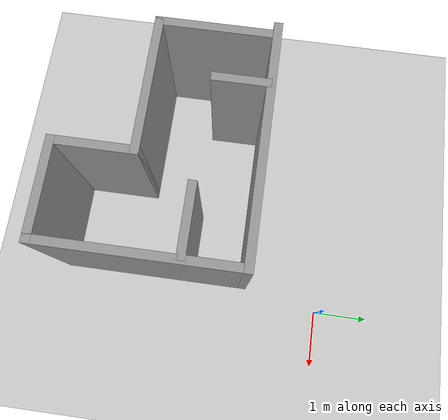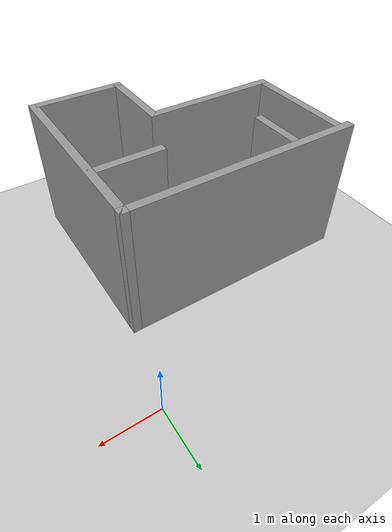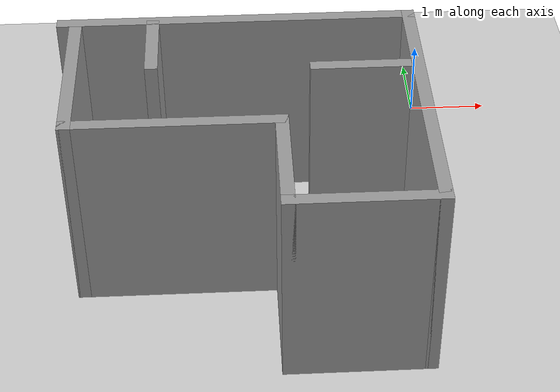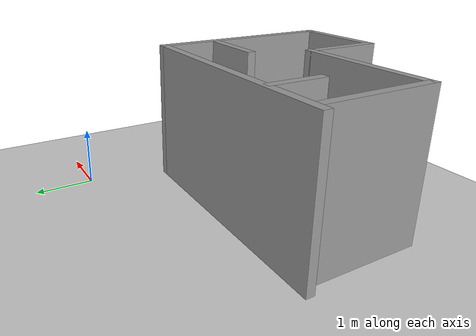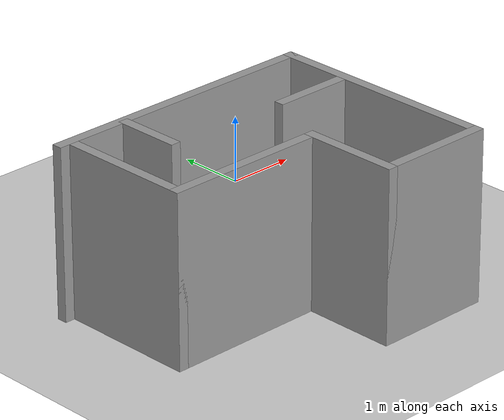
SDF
<sdf version="1.7">
 <world name="default">
  <light name="sun" type="directional">
   <pose>0 0 10 0 -0 0</pose>
   <diffuse>0.8 0.8 0.8 1</diffuse>
   <specular>0.2 0.2 0.2 1</specular>
   <attenuation>
    <range>1000</range>
    <constant>0.9</constant>
    <linear>0.01</linear>
    <quadratic>0.001</quadratic>
   </attenuation>
   <direction>-0.5 0.1 -0.9</direction>
   <spot><inner_angle>0</inner_angle><outer_angle>0</outer_angle><falloff>0</falloff></spot>
  </light>
  <model name="ground_plane">
   <static>1</static>
   <link name="link">
    <collision name="collision">
     <geometry><plane><normal>0 0 1</normal><size>100 100</size></plane></geometry>
     <surface>
      <contact><collide_bitmask>65535</collide_bitmask></contact>
      <friction><ode><mu>100</mu><mu2>50</mu2></ode></friction>
     </surface>
    </collision>
    <visual name="visual">
     <cast_shadows>0</cast_shadows>
     <geometry><plane><normal>0 0 1</normal><size>100 100</size></plane></geometry>
     <material>
      <script><uri>file://media/materials/scripts/gazebo.material</uri><name>Gazebo/Grey</name></script>
     </material>
    </visual>
   </link>
  </model>
  <gravity>0 0 -9.8</gravity>
  <magnetic_field>6e-06 2.3e-05 -4.2e-05</magnetic_field>
  <atmosphere type="adiabatic"/>
  <physics type="ode">
   <max_step_size>0.001</max_step_size>
   <real_time_factor>1</real_time_factor>
   <real_time_update_rate>1000</real_time_update_rate>
  </physics>
  <scene><ambient>0.4 0.4 0.4 1</ambient><background>0.7 0.7 0.7 1</background><shadows>1</shadows></scene>
  <audio><device>default</device></audio>
  <spherical_coordinates>
   <surface_model>EARTH_WGS84</surface_model>
   <latitude_deg>0</latitude_deg>
   <longitude_deg>0</longitude_deg>
   <elevation>0</elevation>
   <heading_deg>0</heading_deg>
  </spherical_coordinates>
  <model name="my_world.world">
   <pose>-2.2625 -2.4375 0 0 -0 0</pose>
   <link name="Wall_1">
    <collision name="Wall_1_Collision">
     <geometry><box><size>2 0.15 2.5</size></box></geometry>
     <pose>0 0 1.25 0 -0 0</pose>
    </collision>
    <visual name="Wall_1_Visual">
     <pose>0 0 1.25 0 -0 0</pose>
     <geometry><box><size>2 0.15 2.5</size></box></geometry>
     <material>
      <script><uri>file://media/materials/scripts/gazebo.material</uri><name>Gazebo/Grey</name></script>
      <ambient>1 1 1 1</ambient>
     </material>
     <meta><layer>0</layer></meta>
    </visual>
    <pose>-2.0375 -0.0875 0 0 -0 -1.5708</pose>
   </link>
   <link name="Wall_10">
    <collision name="Wall_10_Collision">
     <geometry><box><size>1 0.15 2.5</size></box></geometry>
     <pose>0 0 1.25 0 -0 0</pose>
    </collision>
    <visual name="Wall_10_Visual">
     <pose>0 0 1.25 0 -0 0</pose>
     <geometry><box><size>1 0.15 2.5</size></box></geometry>
     <material>
      <script><uri>file://media/materials/scripts/gazebo.material</uri><name>Gazebo/Grey</name></script>
      <ambient>1 1 1 1</ambient>
     </material>
     <meta><layer>0</layer></meta>
    </visual>
    <pose>-1.1275 0.4925 0 0 -0 -1.5708</pose>
   </link>
   <link name="Wall_12">
    <collision name="Wall_12_Collision">
     <geometry><box><size>1.25 0.15 2.5</size></box></geometry>
     <pose>0 0 1.25 0 -0 0</pose>
    </collision>
    <visual name="Wall_12_Visual">
     <pose>0 0 1.25 0 -0 0</pose>
     <geometry><box><size>1.25 0.15 2.5</size></box></geometry>
     <material>
      <script><uri>file://media/materials/scripts/gazebo.material</uri><name>Gazebo/Grey</name></script>
      <ambient>1 1 1 1</ambient>
     </material>
     <meta><layer>0</layer></meta>
    </visual>
    <pose>1.3025 -0.0325 0 0 -0 3.14159</pose>
   </link>
   <link name="Wall_2">
    <collision name="Wall_2_Collision">
     <geometry><box><size>2.5 0.15 2.5</size></box></geometry>
     <pose>0 0 1.25 0 -0 0</pose>
    </collision>
    <visual name="Wall_2_Visual">
     <pose>0 0 1.25 0 -0 0</pose>
     <geometry><box><size>2.5 0.15 2.5</size></box></geometry>
     <material>
      <script><uri>file://media/materials/scripts/gazebo.material</uri><name>Gazebo/Grey</name></script>
      <ambient>1 1 1 1</ambient>
     </material>
     <meta><layer>0</layer></meta>
    </visual>
    <pose>-0.8625 -1.0125 0 0 -0 0</pose>
   </link>
   <link name="Wall_3">
    <collision name="Wall_3_Collision">
     <geometry><box><size>1.5 0.15 2.5</size></box></geometry>
     <pose>0 0 1.25 0 -0 0</pose>
    </collision>
    <visual name="Wall_3_Visual">
     <pose>0 0 1.25 0 -0 0</pose>
     <geometry><box><size>1.5 0.15 2.5</size></box></geometry>
     <material>
      <script><uri>file://media/materials/scripts/gazebo.material</uri><name>Gazebo/Grey</name></script>
      <ambient>1 1 1 1</ambient>
     </material>
     <meta><layer>0</layer></meta>
    </visual>
    <pose>0.3125 -1.6875 0 0 -0 -1.5708</pose>
   </link>
   <link name="Wall_4">
    <collision name="Wall_4_Collision">
     <geometry><box><size>1.75 0.15 2.5</size></box></geometry>
     <pose>0 0 1.25 0 -0 0</pose>
    </collision>
    <visual name="Wall_4_Visual">
     <pose>0 0 1.25 0 -0 0</pose>
     <geometry><box><size>1.75 0.15 2.5</size></box></geometry>
     <material>
      <script><uri>file://media/materials/scripts/gazebo.material</uri><name>Gazebo/Grey</name></script>
      <ambient>1 1 1 1</ambient>
     </material>
     <meta><layer>0</layer></meta>
    </visual>
    <pose>1.1125 -2.3625 0 0 -0 0</pose>
   </link>
   <link name="Wall_7">
    <collision name="Wall_7_Collision">
     <geometry><box><size>3.5 0.15 2.5</size></box></geometry>
     <pose>0 0 1.25 0 -0 0</pose>
    </collision>
    <visual name="Wall_7_Visual">
     <pose>0 0 1.25 0 -0 0</pose>
     <geometry><box><size>3.5 0.15 2.5</size></box></geometry>
     <material>
      <script><uri>file://media/materials/scripts/gazebo.material</uri><name>Gazebo/Grey</name></script>
      <ambient>1 1 1 1</ambient>
     </material>
     <meta><layer>0</layer></meta>
    </visual>
    <pose>1.9125 -0.6875 0 0 -0 1.5708</pose>
   </link>
   <link name="Wall_8">
    <collision name="Wall_8_Collision">
     <geometry><box><size>4.25 0.15 2.5</size></box></geometry>
     <pose>0 0 1.25 0 -0 0</pose>
    </collision>
    <visual name="Wall_8_Visual">
     <pose>0 0 1.25 0 -0 0</pose>
     <geometry><box><size>4.25 0.15 2.5</size></box></geometry>
     <material>
      <script><uri>file://media/materials/scripts/gazebo.material</uri><name>Gazebo/Grey</name></script>
      <ambient>1 1 1 1</ambient>
     </material>
     <meta><layer>0</layer></meta>
    </visual>
    <pose>-0.1375 0.9875 0 0 -0 3.14159</pose>
   </link>
   <static>1</static>
  </model>
 </world>
</sdf>
